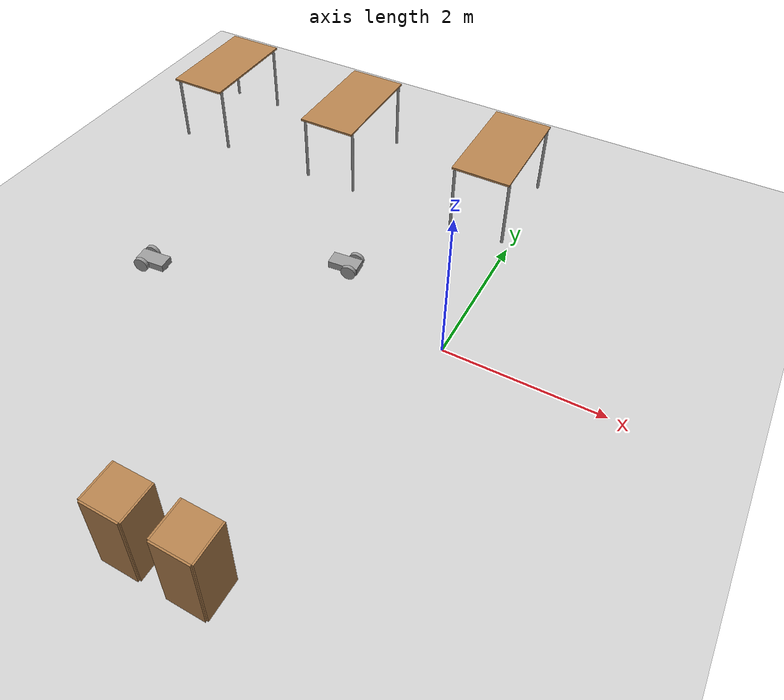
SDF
<sdf version="1.6">
 <world name="default">
  <model name="ground_plane">
   <static>1</static>
   <link name="link">
    <collision name="collision">
     <geometry><plane><normal>0 0 1</normal><size>100 100</size></plane></geometry>
     <surface><friction><ode><mu>100</mu><mu2>50</mu2></ode></friction></surface>
    </collision>
    <visual name="visual">
     <cast_shadows>0</cast_shadows>
     <geometry><plane><normal>0 0 1</normal><size>100 100</size></plane></geometry>
     <material>
      <script><uri>file://media/materials/scripts/gazebo.material</uri><name>Gazebo/Grey</name></script>
     </material>
    </visual>
   </link>
  </model>
  <model name="table">
   <static>1</static>
   <link name="link">
    <collision name="surface">
     <pose>0 0 1 0 -0 0</pose>
     <geometry><box><size>1.5 0.8 0.03</size></box></geometry>
     <surface><friction><ode><mu>0.6</mu><mu2>0.6</mu2></ode></friction></surface>
    </collision>
    <visual name="visual1">
     <pose>0 0 1 0 -0 0</pose>
     <geometry><box><size>1.5 0.8 0.03</size></box></geometry>
     <material>
      <script><uri>file://media/materials/scripts/gazebo.material</uri><name>Gazebo/Wood</name></script>
     </material>
    </visual>
    <collision name="front_left_leg">
     <pose>0.68 0.38 0.5 0 -0 0</pose>
     <geometry><cylinder><radius>0.02</radius><length>1</length></cylinder></geometry>
    </collision>
    <visual name="front_left_leg">
     <pose>0.68 0.38 0.5 0 -0 0</pose>
     <geometry><cylinder><radius>0.02</radius><length>1</length></cylinder></geometry>
     <material>
      <script><uri>file://media/materials/scripts/gazebo.material</uri><name>Gazebo/Grey</name></script>
     </material>
    </visual>
    <collision name="front_right_leg">
     <pose>0.68 -0.38 0.5 0 -0 0</pose>
     <geometry><cylinder><radius>0.02</radius><length>1</length></cylinder></geometry>
    </collision>
    <visual name="front_right_leg">
     <pose>0.68 -0.38 0.5 0 -0 0</pose>
     <geometry><cylinder><radius>0.02</radius><length>1</length></cylinder></geometry>
     <material>
      <script><uri>file://media/materials/scripts/gazebo.material</uri><name>Gazebo/Grey</name></script>
     </material>
    </visual>
    <collision name="back_right_leg">
     <pose>-0.68 -0.38 0.5 0 -0 0</pose>
     <geometry><cylinder><radius>0.02</radius><length>1</length></cylinder></geometry>
    </collision>
    <visual name="back_right_leg">
     <pose>-0.68 -0.38 0.5 0 -0 0</pose>
     <geometry><cylinder><radius>0.02</radius><length>1</length></cylinder></geometry>
     <material>
      <script><uri>file://media/materials/scripts/gazebo.material</uri><name>Gazebo/Grey</name></script>
     </material>
    </visual>
    <collision name="back_left_leg">
     <pose>-0.68 0.38 0.5 0 -0 0</pose>
     <geometry><cylinder><radius>0.02</radius><length>1</length></cylinder></geometry>
    </collision>
    <visual name="back_left_leg">
     <pose>-0.68 0.38 0.5 0 -0 0</pose>
     <geometry><cylinder><radius>0.02</radius><length>1</length></cylinder></geometry>
     <material>
      <script><uri>file://media/materials/scripts/gazebo.material</uri><name>Gazebo/Grey</name></script>
     </material>
    </visual>
   </link>
   <pose>-0.5 2.8 0 0 -0 1.5707</pose>
  </model>
  <model name="table_clone">
   <static>1</static>
   <link name="link">
    <collision name="surface">
     <pose>0 0 1 0 -0 0</pose>
     <geometry><box><size>1.5 0.8 0.03</size></box></geometry>
     <surface><friction><ode><mu>0.6</mu><mu2>0.6</mu2></ode></friction></surface>
    </collision>
    <visual name="visual1">
     <pose>0 0 1 0 -0 0</pose>
     <geometry><box><size>1.5 0.8 0.03</size></box></geometry>
     <material>
      <script><uri>file://media/materials/scripts/gazebo.material</uri><name>Gazebo/Wood</name></script>
     </material>
    </visual>
    <collision name="front_left_leg">
     <pose>0.68 0.38 0.5 0 -0 0</pose>
     <geometry><cylinder><radius>0.02</radius><length>1</length></cylinder></geometry>
    </collision>
    <visual name="front_left_leg">
     <pose>0.68 0.38 0.5 0 -0 0</pose>
     <geometry><cylinder><radius>0.02</radius><length>1</length></cylinder></geometry>
     <material>
      <script><uri>file://media/materials/scripts/gazebo.material</uri><name>Gazebo/Grey</name></script>
     </material>
    </visual>
    <collision name="front_right_leg">
     <pose>0.68 -0.38 0.5 0 -0 0</pose>
     <geometry><cylinder><radius>0.02</radius><length>1</length></cylinder></geometry>
    </collision>
    <visual name="front_right_leg">
     <pose>0.68 -0.38 0.5 0 -0 0</pose>
     <geometry><cylinder><radius>0.02</radius><length>1</length></cylinder></geometry>
     <material>
      <script><uri>file://media/materials/scripts/gazebo.material</uri><name>Gazebo/Grey</name></script>
     </material>
    </visual>
    <collision name="back_right_leg">
     <pose>-0.68 -0.38 0.5 0 -0 0</pose>
     <geometry><cylinder><radius>0.02</radius><length>1</length></cylinder></geometry>
    </collision>
    <visual name="back_right_leg">
     <pose>-0.68 -0.38 0.5 0 -0 0</pose>
     <geometry><cylinder><radius>0.02</radius><length>1</length></cylinder></geometry>
     <material>
      <script><uri>file://media/materials/scripts/gazebo.material</uri><name>Gazebo/Grey</name></script>
     </material>
    </visual>
    <collision name="back_left_leg">
     <pose>-0.68 0.38 0.5 0 -0 0</pose>
     <geometry><cylinder><radius>0.02</radius><length>1</length></cylinder></geometry>
    </collision>
    <visual name="back_left_leg">
     <pose>-0.68 0.38 0.5 0 -0 0</pose>
     <geometry><cylinder><radius>0.02</radius><length>1</length></cylinder></geometry>
     <material>
      <script><uri>file://media/materials/scripts/gazebo.material</uri><name>Gazebo/Grey</name></script>
     </material>
    </visual>
   </link>
   <pose>-2.8 2.8 0 0 -0 1.5707</pose>
  </model>
  <model name="table_clone_0">
   <static>1</static>
   <link name="link">
    <collision name="surface">
     <pose>0 0 1 0 -0 0</pose>
     <geometry><box><size>1.5 0.8 0.03</size></box></geometry>
     <surface><friction><ode><mu>0.6</mu><mu2>0.6</mu2></ode></friction></surface>
    </collision>
    <visual name="visual1">
     <pose>0 0 1 0 -0 0</pose>
     <geometry><box><size>1.5 0.8 0.03</size></box></geometry>
     <material>
      <script><uri>file://media/materials/scripts/gazebo.material</uri><name>Gazebo/Wood</name></script>
     </material>
    </visual>
    <collision name="front_left_leg">
     <pose>0.68 0.38 0.5 0 -0 0</pose>
     <geometry><cylinder><radius>0.02</radius><length>1</length></cylinder></geometry>
    </collision>
    <visual name="front_left_leg">
     <pose>0.68 0.38 0.5 0 -0 0</pose>
     <geometry><cylinder><radius>0.02</radius><length>1</length></cylinder></geometry>
     <material>
      <script><uri>file://media/materials/scripts/gazebo.material</uri><name>Gazebo/Grey</name></script>
     </material>
    </visual>
    <collision name="front_right_leg">
     <pose>0.68 -0.38 0.5 0 -0 0</pose>
     <geometry><cylinder><radius>0.02</radius><length>1</length></cylinder></geometry>
    </collision>
    <visual name="front_right_leg">
     <pose>0.68 -0.38 0.5 0 -0 0</pose>
     <geometry><cylinder><radius>0.02</radius><length>1</length></cylinder></geometry>
     <material>
      <script><uri>file://media/materials/scripts/gazebo.material</uri><name>Gazebo/Grey</name></script>
     </material>
    </visual>
    <collision name="back_right_leg">
     <pose>-0.68 -0.38 0.5 0 -0 0</pose>
     <geometry><cylinder><radius>0.02</radius><length>1</length></cylinder></geometry>
    </collision>
    <visual name="back_right_leg">
     <pose>-0.68 -0.38 0.5 0 -0 0</pose>
     <geometry><cylinder><radius>0.02</radius><length>1</length></cylinder></geometry>
     <material>
      <script><uri>file://media/materials/scripts/gazebo.material</uri><name>Gazebo/Grey</name></script>
     </material>
    </visual>
    <collision name="back_left_leg">
     <pose>-0.68 0.38 0.5 0 -0 0</pose>
     <geometry><cylinder><radius>0.02</radius><length>1</length></cylinder></geometry>
    </collision>
    <visual name="back_left_leg">
     <pose>-0.68 0.38 0.5 0 -0 0</pose>
     <geometry><cylinder><radius>0.02</radius><length>1</length></cylinder></geometry>
     <material>
      <script><uri>file://media/materials/scripts/gazebo.material</uri><name>Gazebo/Grey</name></script>
     </material>
    </visual>
   </link>
   <pose>-5.00107 2.8 0 0 -0 1.5707</pose>
  </model>
  <model name="cabinet">
   <static>1</static>
   <link name="cabinet_bottom_plate">
    <inertial>
     <pose>0 0 -1 0 -0 0</pose>
     <inertia><ixx>2.05</ixx><ixy>0</ixy><ixz>0</ixz><iyy>2.05</iyy><iyz>0</iyz><izz>2.05</izz></inertia>
     <mass>25</mass>
    </inertial>
    <collision name="cabinet_bottom_plate_geom">
     <pose>0 0 0.01 0 -0 0</pose>
     <geometry><box><size>0.45 0.45 0.02</size></box></geometry>
    </collision>
    <visual name="cabinet_bottom_plate_geom_visual">
     <pose>0 0 0.01 0 -0 0</pose>
     <geometry><box><size>0.45 0.45 0.02</size></box></geometry>
     <material>
      <script><uri>file://media/materials/scripts/gazebo.material</uri><name>Gazebo/Wood</name></script>
     </material>
    </visual>
    <collision name="cabinet_bottom_plate_geom_cabinet_back_plate">
     <pose>0.235 0 0.51 0 -0 0</pose>
     <geometry><box><size>0.02 0.45 1.02</size></box></geometry>
    </collision>
    <visual name="cabinet_bottom_plate_geom_cabinet_back_plate_visual">
     <pose>0.235 0 0.51 0 -0 0</pose>
     <geometry><box><size>0.02 0.45 1.02</size></box></geometry>
     <material>
      <script><uri>file://media/materials/scripts/gazebo.material</uri><name>Gazebo/Wood</name></script>
     </material>
    </visual>
    <collision name="cabinet_bottom_plate_geom_cabinet_left_plate">
     <pose>0 0.235 0.51 0 -0 0</pose>
     <geometry><box><size>0.45 0.02 1.02</size></box></geometry>
    </collision>
    <visual name="cabinet_bottom_plate_geom_cabinet_left_plate_visual">
     <pose>0 0.235 0.51 0 -0 0</pose>
     <geometry><box><size>0.45 0.02 1.02</size></box></geometry>
     <material>
      <script><uri>file://media/materials/scripts/gazebo.material</uri><name>Gazebo/Wood</name></script>
     </material>
    </visual>
    <collision name="cabinet_bottom_plate_geom_cabinet_middle_plate">
     <pose>0 0 0.51 0 -0 0</pose>
     <geometry><box><size>0.45 0.45 0.02</size></box></geometry>
    </collision>
    <visual name="cabinet_bottom_plate_geom_cabinet_middle_plate_visual">
     <pose>0 0 0.51 0 -0 0</pose>
     <geometry><box><size>0.45 0.45 0.02</size></box></geometry>
     <material>
      <script><uri>file://media/materials/scripts/gazebo.material</uri><name>Gazebo/Wood</name></script>
     </material>
    </visual>
    <collision name="cabinet_bottom_plate_geom_cabinet_right_plate">
     <pose>0 -0.235 0.51 0 -0 0</pose>
     <geometry><box><size>0.45 0.02 1.02</size></box></geometry>
    </collision>
    <visual name="cabinet_bottom_plate_geom_cabinet_right_plate_visual">
     <pose>0 -0.235 0.51 0 -0 0</pose>
     <geometry><box><size>0.45 0.02 1.02</size></box></geometry>
     <material>
      <script><uri>file://media/materials/scripts/gazebo.material</uri><name>Gazebo/Wood</name></script>
     </material>
    </visual>
    <collision name="cabinet_bottom_plate_geom_cabinet_top_plate">
     <pose>0 0 1.01 0 -0 0</pose>
     <geometry><box><size>0.45 0.45 0.02</size></box></geometry>
    </collision>
    <visual name="cabinet_bottom_plate_geom_cabinet_top_plate_visual">
     <pose>0 0 1.01 0 -0 0</pose>
     <geometry><box><size>0.45 0.45 0.02</size></box></geometry>
     <material>
      <script><uri>file://media/materials/scripts/gazebo.material</uri><name>Gazebo/Wood</name></script>
     </material>
    </visual>
   </link>
   <pose>-1.47484 -3.7 0 0 0 -1.5707</pose>
  </model>
  <model name="cabinet_clone">
   <static>1</static>
   <link name="cabinet_bottom_plate">
    <inertial>
     <pose>0 0 -1 0 -0 0</pose>
     <inertia><ixx>2.05</ixx><ixy>0</ixy><ixz>0</ixz><iyy>2.05</iyy><iyz>0</iyz><izz>2.05</izz></inertia>
     <mass>25</mass>
    </inertial>
    <collision name="cabinet_bottom_plate_geom">
     <pose>0 0 0.01 0 -0 0</pose>
     <geometry><box><size>0.45 0.45 0.02</size></box></geometry>
    </collision>
    <visual name="cabinet_bottom_plate_geom_visual">
     <pose>0 0 0.01 0 -0 0</pose>
     <geometry><box><size>0.45 0.45 0.02</size></box></geometry>
     <material>
      <script><uri>file://media/materials/scripts/gazebo.material</uri><name>Gazebo/Wood</name></script>
     </material>
    </visual>
    <collision name="cabinet_bottom_plate_geom_cabinet_back_plate">
     <pose>0.235 0 0.51 0 -0 0</pose>
     <geometry><box><size>0.02 0.45 1.02</size></box></geometry>
    </collision>
    <visual name="cabinet_bottom_plate_geom_cabinet_back_plate_visual">
     <pose>0.235 0 0.51 0 -0 0</pose>
     <geometry><box><size>0.02 0.45 1.02</size></box></geometry>
     <material>
      <script><uri>file://media/materials/scripts/gazebo.material</uri><name>Gazebo/Wood</name></script>
     </material>
    </visual>
    <collision name="cabinet_bottom_plate_geom_cabinet_left_plate">
     <pose>0 0.235 0.51 0 -0 0</pose>
     <geometry><box><size>0.45 0.02 1.02</size></box></geometry>
    </collision>
    <visual name="cabinet_bottom_plate_geom_cabinet_left_plate_visual">
     <pose>0 0.235 0.51 0 -0 0</pose>
     <geometry><box><size>0.45 0.02 1.02</size></box></geometry>
     <material>
      <script><uri>file://media/materials/scripts/gazebo.material</uri><name>Gazebo/Wood</name></script>
     </material>
    </visual>
    <collision name="cabinet_bottom_plate_geom_cabinet_middle_plate">
     <pose>0 0 0.51 0 -0 0</pose>
     <geometry><box><size>0.45 0.45 0.02</size></box></geometry>
    </collision>
    <visual name="cabinet_bottom_plate_geom_cabinet_middle_plate_visual">
     <pose>0 0 0.51 0 -0 0</pose>
     <geometry><box><size>0.45 0.45 0.02</size></box></geometry>
     <material>
      <script><uri>file://media/materials/scripts/gazebo.material</uri><name>Gazebo/Wood</name></script>
     </material>
    </visual>
    <collision name="cabinet_bottom_plate_geom_cabinet_right_plate">
     <pose>0 -0.235 0.51 0 -0 0</pose>
     <geometry><box><size>0.45 0.02 1.02</size></box></geometry>
    </collision>
    <visual name="cabinet_bottom_plate_geom_cabinet_right_plate_visual">
     <pose>0 -0.235 0.51 0 -0 0</pose>
     <geometry><box><size>0.45 0.02 1.02</size></box></geometry>
     <material>
      <script><uri>file://media/materials/scripts/gazebo.material</uri><name>Gazebo/Wood</name></script>
     </material>
    </visual>
    <collision name="cabinet_bottom_plate_geom_cabinet_top_plate">
     <pose>0 0 1.01 0 -0 0</pose>
     <geometry><box><size>0.45 0.45 0.02</size></box></geometry>
    </collision>
    <visual name="cabinet_bottom_plate_geom_cabinet_top_plate_visual">
     <pose>0 0 1.01 0 -0 0</pose>
     <geometry><box><size>0.45 0.45 0.02</size></box></geometry>
     <material>
      <script><uri>file://media/materials/scripts/gazebo.material</uri><name>Gazebo/Wood</name></script>
     </material>
    </visual>
   </link>
   <pose>-0.7 -3.7 0 0 0 -1.5707</pose>
  </model>
  <model name="robot_0">
   <link name="link_0">
    <pose>0 0 0.1 -0 -0 -0</pose>
    <inertial>
     <mass>1</mass>
     <inertia>
      <ixx>0.166667</ixx>
      <ixy>0</ixy>
      <ixz>0</ixz>
      <iyy>0.166667</iyy>
      <iyz>0</iyz>
      <izz>0.166667</izz>
     </inertia>
     <pose>0 0 0.1 0 -0 0</pose>
    </inertial>
    <visual name="caster_visual">
     <pose>-0.15 0 -0.05 0 -0 0</pose>
     <geometry><sphere><radius>0.05</radius></sphere></geometry>
     <material>
      <lighting>1</lighting>
      <script><uri>file://media/materials/scripts/gazebo.material</uri><name>Gazebo/Grey</name></script>
      <shader type="pixel"><normal_map>__default__</normal_map></shader>
      <ambient>0.3 0.3 0.3 1</ambient>
      <diffuse>0.7 0.7 0.7 1</diffuse>
      <specular>0.01 0.01 0.01 1</specular>
      <emissive>0 0 0 1</emissive>
     </material>
    </visual>
    <visual name="visual">
     <geometry><box><size>0.4 0.2 0.1</size></box></geometry>
     <material>
      <lighting>1</lighting>
      <script><uri>file://media/materials/scripts/gazebo.material</uri><name>Gazebo/Grey</name></script>
      <shader type="pixel"><normal_map>__default__</normal_map></shader>
      <ambient>0.3 0.3 0.3 1</ambient>
      <diffuse>0.7 0.7 0.7 1</diffuse>
      <specular>0.01 0.01 0.01 1</specular>
      <emissive>0 0 0 1</emissive>
     </material>
    </visual>
    <collision name="caster_collision">
     <pose>-0.15 0 -0.05 0 -0 0</pose>
     <geometry><sphere><radius>0.05</radius></sphere></geometry>
     <surface>
      <friction>
       <ode><mu>0</mu><mu2>0</mu2><fdir1>0 0 0</fdir1><slip1>1</slip1><slip2>1</slip2></ode>
       <torsional>
        <coefficient>1</coefficient>
        <patch_radius>0</patch_radius>
        <surface_radius>0</surface_radius>
        <use_patch_radius>1</use_patch_radius>
        <ode><slip>0</slip></ode>
       </torsional>
      </friction>
      <bounce><restitution_coefficient>0</restitution_coefficient><threshold>1e+06</threshold></bounce>
      <contact>
       <collide_without_contact>0</collide_without_contact>
       <collide_without_contact_bitmask>1</collide_without_contact_bitmask>
       <collide_bitmask>1</collide_bitmask>
       <ode>
        <soft_cfm>0</soft_cfm>
        <soft_erp>0.2</soft_erp>
        <kp>1e+13</kp>
        <kd>1</kd>
        <max_vel>0.01</max_vel>
        <min_depth>0</min_depth>
       </ode>
       <bullet>
        <split_impulse>1</split_impulse>
        <split_impulse_penetration_threshold>-0.01</split_impulse_penetration_threshold>
        <soft_cfm>0</soft_cfm>
        <soft_erp>0.2</soft_erp>
        <kp>1e+13</kp>
        <kd>1</kd>
       </bullet>
      </contact>
     </surface>
    </collision>
    <collision name="collision">
     <geometry><box><size>0.4 0.2 0.1</size></box></geometry>
     <surface>
      <friction>
       <ode><mu>1</mu><mu2>1</mu2><fdir1>0 0 0</fdir1><slip1>0</slip1><slip2>0</slip2></ode>
       <torsional>
        <coefficient>1</coefficient>
        <patch_radius>0</patch_radius>
        <surface_radius>0</surface_radius>
        <use_patch_radius>1</use_patch_radius>
        <ode><slip>0</slip></ode>
       </torsional>
      </friction>
      <bounce><restitution_coefficient>0</restitution_coefficient><threshold>1e+06</threshold></bounce>
      <contact>
       <collide_without_contact>0</collide_without_contact>
       <collide_without_contact_bitmask>1</collide_without_contact_bitmask>
       <collide_bitmask>1</collide_bitmask>
       <ode>
        <soft_cfm>0</soft_cfm>
        <soft_erp>0.2</soft_erp>
        <kp>1e+13</kp>
        <kd>1</kd>
        <max_vel>0.01</max_vel>
        <min_depth>0</min_depth>
       </ode>
       <bullet>
        <split_impulse>1</split_impulse>
        <split_impulse_penetration_threshold>-0.01</split_impulse_penetration_threshold>
        <soft_cfm>0</soft_cfm>
        <soft_erp>0.2</soft_erp>
        <kp>1e+13</kp>
        <kd>1</kd>
       </bullet>
      </contact>
     </surface>
    </collision>
   </link>
   <link name="link_2">
    <pose>0.1 0.13 0.1 -0.00057 1.5707 1.57013</pose>
    <inertial>
     <mass>1</mass>
     <inertia><ixx>0.145833</ixx><ixy>0</ixy><ixz>0</ixz><iyy>0.145833</iyy><iyz>0</iyz><izz>0.125</izz></inertia>
    </inertial>
    <visual name="visual">
     <geometry><cylinder><radius>0.1</radius><length>0.05</length></cylinder></geometry>
     <material>
      <lighting>1</lighting>
      <script><uri>file://media/materials/scripts/gazebo.material</uri><name>Gazebo/Grey</name></script>
      <shader type="pixel"><normal_map>__default__</normal_map></shader>
      <ambient>0.3 0.3 0.3 1</ambient>
      <diffuse>0.7 0.7 0.7 1</diffuse>
      <specular>0.01 0.01 0.01 1</specular>
      <emissive>0 0 0 1</emissive>
     </material>
    </visual>
    <collision name="collision">
     <geometry><cylinder><radius>0.1</radius><length>0.05</length></cylinder></geometry>
     <surface>
      <friction>
       <ode><mu>1</mu><mu2>1</mu2><fdir1>0 0 0</fdir1><slip1>0</slip1><slip2>0</slip2></ode>
       <torsional>
        <coefficient>1</coefficient>
        <patch_radius>0</patch_radius>
        <surface_radius>0</surface_radius>
        <use_patch_radius>1</use_patch_radius>
        <ode><slip>0</slip></ode>
       </torsional>
      </friction>
      <bounce><restitution_coefficient>0</restitution_coefficient><threshold>1e+06</threshold></bounce>
      <contact>
       <collide_without_contact>0</collide_without_contact>
       <collide_without_contact_bitmask>1</collide_without_contact_bitmask>
       <collide_bitmask>1</collide_bitmask>
       <ode>
        <soft_cfm>0</soft_cfm>
        <soft_erp>0.2</soft_erp>
        <kp>1e+13</kp>
        <kd>1</kd>
        <max_vel>0.01</max_vel>
        <min_depth>0</min_depth>
       </ode>
       <bullet>
        <split_impulse>1</split_impulse>
        <split_impulse_penetration_threshold>-0.01</split_impulse_penetration_threshold>
        <soft_cfm>0</soft_cfm>
        <soft_erp>0.2</soft_erp>
        <kp>1e+13</kp>
        <kd>1</kd>
       </bullet>
      </contact>
     </surface>
    </collision>
   </link>
   <link name="link_3">
    <pose>0.1 -0.13 0.1 -0.00057 1.5707 1.57013</pose>
    <inertial>
     <mass>1</mass>
     <inertia><ixx>0.145833</ixx><ixy>0</ixy><ixz>0</ixz><iyy>0.145833</iyy><iyz>0</iyz><izz>0.125</izz></inertia>
    </inertial>
    <visual name="visual">
     <geometry><cylinder><radius>0.1</radius><length>0.05</length></cylinder></geometry>
     <material>
      <lighting>1</lighting>
      <script><uri>file://media/materials/scripts/gazebo.material</uri><name>Gazebo/Grey</name></script>
      <shader type="pixel"><normal_map>__default__</normal_map></shader>
      <ambient>0.3 0.3 0.3 1</ambient>
      <diffuse>0.7 0.7 0.7 1</diffuse>
      <specular>0.01 0.01 0.01 1</specular>
      <emissive>0 0 0 1</emissive>
     </material>
    </visual>
    <collision name="collision">
     <geometry><cylinder><radius>0.1</radius><length>0.05</length></cylinder></geometry>
     <surface>
      <friction>
       <ode><mu>1</mu><mu2>1</mu2><fdir1>0 0 0</fdir1><slip1>0</slip1><slip2>0</slip2></ode>
       <torsional>
        <coefficient>1</coefficient>
        <patch_radius>0</patch_radius>
        <surface_radius>0</surface_radius>
        <use_patch_radius>1</use_patch_radius>
        <ode><slip>0</slip></ode>
       </torsional>
      </friction>
      <bounce><restitution_coefficient>0</restitution_coefficient><threshold>1e+06</threshold></bounce>
      <contact>
       <collide_without_contact>0</collide_without_contact>
       <collide_without_contact_bitmask>1</collide_without_contact_bitmask>
       <collide_bitmask>1</collide_bitmask>
       <ode>
        <soft_cfm>0</soft_cfm>
        <soft_erp>0.2</soft_erp>
        <kp>1e+13</kp>
        <kd>1</kd>
        <max_vel>0.01</max_vel>
        <min_depth>0</min_depth>
       </ode>
       <bullet>
        <split_impulse>1</split_impulse>
        <split_impulse_penetration_threshold>-0.01</split_impulse_penetration_threshold>
        <soft_cfm>0</soft_cfm>
        <soft_erp>0.2</soft_erp>
        <kp>1e+13</kp>
        <kd>1</kd>
       </bullet>
      </contact>
     </surface>
    </collision>
   </link>
   <joint name="link_0_JOINT_2" type="revolute">
    <parent>link_0</parent>
    <child>link_2</child>
    <pose>0 0 -0.03 0 -0 0</pose>
    <axis>
     <xyz>0 0 -1</xyz>
     <use_parent_model_frame>0</use_parent_model_frame>
     <limit>
      <lower>-1.79769e+308</lower>
      <upper>1.79769e+308</upper>
      <effort>-1</effort>
      <velocity>-1</velocity>
     </limit>
     <dynamics>
      <spring_reference>0</spring_reference>
      <spring_stiffness>0</spring_stiffness>
      <damping>0</damping>
      <friction>0</friction>
     </dynamics>
    </axis>
    <physics>
     <ode><limit><cfm>0</cfm><erp>0.2</erp></limit><suspension><cfm>0</cfm><erp>0.2</erp></suspension></ode>
    </physics>
   </joint>
   <joint name="link_0_JOINT_3" type="revolute">
    <parent>link_0</parent>
    <child>link_3</child>
    <pose>0 0 -0.03 0 -0 0</pose>
    <axis>
     <xyz>0 0 -1</xyz>
     <use_parent_model_frame>0</use_parent_model_frame>
     <limit>
      <lower>-1.79769e+308</lower>
      <upper>1.79769e+308</upper>
      <effort>-1</effort>
      <velocity>-1</velocity>
     </limit>
     <dynamics>
      <spring_reference>0</spring_reference>
      <spring_stiffness>0</spring_stiffness>
      <damping>0</damping>
      <friction>0</friction>
     </dynamics>
    </axis>
    <physics>
     <ode><limit><cfm>0</cfm><erp>0.2</erp></limit><suspension><cfm>0</cfm><erp>0.2</erp></suspension></ode>
    </physics>
   </joint>
   <static>0</static>
   <pose>-1.6868 0.642277 4e-06 -1.8e-05 -1e-06 0.097278</pose>
  </model>
  <model name="robot_0_clone">
   <link name="link_0">
    <pose>0 0 0.1 -0 -0 -0</pose>
    <inertial>
     <mass>1</mass>
     <inertia>
      <ixx>0.166667</ixx>
      <ixy>0</ixy>
      <ixz>0</ixz>
      <iyy>0.166667</iyy>
      <iyz>0</iyz>
      <izz>0.166667</izz>
     </inertia>
     <pose>0 0 0.1 0 -0 0</pose>
    </inertial>
    <visual name="caster_visual">
     <pose>-0.15 0 -0.05 0 -0 0</pose>
     <geometry><sphere><radius>0.05</radius></sphere></geometry>
     <material>
      <lighting>1</lighting>
      <script><uri>file://media/materials/scripts/gazebo.material</uri><name>Gazebo/Grey</name></script>
      <shader type="pixel"><normal_map>__default__</normal_map></shader>
      <ambient>0.3 0.3 0.3 1</ambient>
      <diffuse>0.7 0.7 0.7 1</diffuse>
      <specular>0.01 0.01 0.01 1</specular>
      <emissive>0 0 0 1</emissive>
     </material>
    </visual>
    <visual name="visual">
     <geometry><box><size>0.4 0.2 0.1</size></box></geometry>
     <material>
      <lighting>1</lighting>
      <script><uri>file://media/materials/scripts/gazebo.material</uri><name>Gazebo/Grey</name></script>
      <shader type="pixel"><normal_map>__default__</normal_map></shader>
      <ambient>0.3 0.3 0.3 1</ambient>
      <diffuse>0.7 0.7 0.7 1</diffuse>
      <specular>0.01 0.01 0.01 1</specular>
      <emissive>0 0 0 1</emissive>
     </material>
    </visual>
    <collision name="caster_collision">
     <pose>-0.15 0 -0.05 0 -0 0</pose>
     <geometry><sphere><radius>0.05</radius></sphere></geometry>
     <surface>
      <friction>
       <ode><mu>0</mu><mu2>0</mu2><fdir1>0 0 0</fdir1><slip1>1</slip1><slip2>1</slip2></ode>
       <torsional>
        <coefficient>1</coefficient>
        <patch_radius>0</patch_radius>
        <surface_radius>0</surface_radius>
        <use_patch_radius>1</use_patch_radius>
        <ode><slip>0</slip></ode>
       </torsional>
      </friction>
      <bounce><restitution_coefficient>0</restitution_coefficient><threshold>1e+06</threshold></bounce>
      <contact>
       <collide_without_contact>0</collide_without_contact>
       <collide_without_contact_bitmask>1</collide_without_contact_bitmask>
       <collide_bitmask>1</collide_bitmask>
       <ode>
        <soft_cfm>0</soft_cfm>
        <soft_erp>0.2</soft_erp>
        <kp>1e+13</kp>
        <kd>1</kd>
        <max_vel>0.01</max_vel>
        <min_depth>0</min_depth>
       </ode>
       <bullet>
        <split_impulse>1</split_impulse>
        <split_impulse_penetration_threshold>-0.01</split_impulse_penetration_threshold>
        <soft_cfm>0</soft_cfm>
        <soft_erp>0.2</soft_erp>
        <kp>1e+13</kp>
        <kd>1</kd>
       </bullet>
      </contact>
     </surface>
    </collision>
    <collision name="collision">
     <geometry><box><size>0.4 0.2 0.1</size></box></geometry>
     <surface>
      <friction>
       <ode><mu>1</mu><mu2>1</mu2><fdir1>0 0 0</fdir1><slip1>0</slip1><slip2>0</slip2></ode>
       <torsional>
        <coefficient>1</coefficient>
        <patch_radius>0</patch_radius>
        <surface_radius>0</surface_radius>
        <use_patch_radius>1</use_patch_radius>
        <ode><slip>0</slip></ode>
       </torsional>
      </friction>
      <bounce><restitution_coefficient>0</restitution_coefficient><threshold>1e+06</threshold></bounce>
      <contact>
       <collide_without_contact>0</collide_without_contact>
       <collide_without_contact_bitmask>1</collide_without_contact_bitmask>
       <collide_bitmask>1</collide_bitmask>
       <ode>
        <soft_cfm>0</soft_cfm>
        <soft_erp>0.2</soft_erp>
        <kp>1e+13</kp>
        <kd>1</kd>
        <max_vel>0.01</max_vel>
        <min_depth>0</min_depth>
       </ode>
       <bullet>
        <split_impulse>1</split_impulse>
        <split_impulse_penetration_threshold>-0.01</split_impulse_penetration_threshold>
        <soft_cfm>0</soft_cfm>
        <soft_erp>0.2</soft_erp>
        <kp>1e+13</kp>
        <kd>1</kd>
       </bullet>
      </contact>
     </surface>
    </collision>
   </link>
   <link name="link_2">
    <pose>0.1 0.13 0.1 -0.00057 1.5707 1.57013</pose>
    <inertial>
     <mass>1</mass>
     <inertia><ixx>0.145833</ixx><ixy>0</ixy><ixz>0</ixz><iyy>0.145833</iyy><iyz>0</iyz><izz>0.125</izz></inertia>
    </inertial>
    <visual name="visual">
     <geometry><cylinder><radius>0.1</radius><length>0.05</length></cylinder></geometry>
     <material>
      <lighting>1</lighting>
      <script><uri>file://media/materials/scripts/gazebo.material</uri><name>Gazebo/Grey</name></script>
      <shader type="pixel"><normal_map>__default__</normal_map></shader>
      <ambient>0.3 0.3 0.3 1</ambient>
      <diffuse>0.7 0.7 0.7 1</diffuse>
      <specular>0.01 0.01 0.01 1</specular>
      <emissive>0 0 0 1</emissive>
     </material>
    </visual>
    <collision name="collision">
     <geometry><cylinder><radius>0.1</radius><length>0.05</length></cylinder></geometry>
     <surface>
      <friction>
       <ode><mu>1</mu><mu2>1</mu2><fdir1>0 0 0</fdir1><slip1>0</slip1><slip2>0</slip2></ode>
       <torsional>
        <coefficient>1</coefficient>
        <patch_radius>0</patch_radius>
        <surface_radius>0</surface_radius>
        <use_patch_radius>1</use_patch_radius>
        <ode><slip>0</slip></ode>
       </torsional>
      </friction>
      <bounce><restitution_coefficient>0</restitution_coefficient><threshold>1e+06</threshold></bounce>
      <contact>
       <collide_without_contact>0</collide_without_contact>
       <collide_without_contact_bitmask>1</collide_without_contact_bitmask>
       <collide_bitmask>1</collide_bitmask>
       <ode>
        <soft_cfm>0</soft_cfm>
        <soft_erp>0.2</soft_erp>
        <kp>1e+13</kp>
        <kd>1</kd>
        <max_vel>0.01</max_vel>
        <min_depth>0</min_depth>
       </ode>
       <bullet>
        <split_impulse>1</split_impulse>
        <split_impulse_penetration_threshold>-0.01</split_impulse_penetration_threshold>
        <soft_cfm>0</soft_cfm>
        <soft_erp>0.2</soft_erp>
        <kp>1e+13</kp>
        <kd>1</kd>
       </bullet>
      </contact>
     </surface>
    </collision>
   </link>
   <link name="link_3">
    <pose>0.1 -0.13 0.1 -0.00057 1.5707 1.57013</pose>
    <inertial>
     <mass>1</mass>
     <inertia><ixx>0.145833</ixx><ixy>0</ixy><ixz>0</ixz><iyy>0.145833</iyy><iyz>0</iyz><izz>0.125</izz></inertia>
    </inertial>
    <visual name="visual">
     <geometry><cylinder><radius>0.1</radius><length>0.05</length></cylinder></geometry>
     <material>
      <lighting>1</lighting>
      <script><uri>file://media/materials/scripts/gazebo.material</uri><name>Gazebo/Grey</name></script>
      <shader type="pixel"><normal_map>__default__</normal_map></shader>
      <ambient>0.3 0.3 0.3 1</ambient>
      <diffuse>0.7 0.7 0.7 1</diffuse>
      <specular>0.01 0.01 0.01 1</specular>
      <emissive>0 0 0 1</emissive>
     </material>
    </visual>
    <collision name="collision">
     <geometry><cylinder><radius>0.1</radius><length>0.05</length></cylinder></geometry>
     <surface>
      <friction>
       <ode><mu>1</mu><mu2>1</mu2><fdir1>0 0 0</fdir1><slip1>0</slip1><slip2>0</slip2></ode>
       <torsional>
        <coefficient>1</coefficient>
        <patch_radius>0</patch_radius>
        <surface_radius>0</surface_radius>
        <use_patch_radius>1</use_patch_radius>
        <ode><slip>0</slip></ode>
       </torsional>
      </friction>
      <bounce><restitution_coefficient>0</restitution_coefficient><threshold>1e+06</threshold></bounce>
      <contact>
       <collide_without_contact>0</collide_without_contact>
       <collide_without_contact_bitmask>1</collide_without_contact_bitmask>
       <collide_bitmask>1</collide_bitmask>
       <ode>
        <soft_cfm>0</soft_cfm>
        <soft_erp>0.2</soft_erp>
        <kp>1e+13</kp>
        <kd>1</kd>
        <max_vel>0.01</max_vel>
        <min_depth>0</min_depth>
       </ode>
       <bullet>
        <split_impulse>1</split_impulse>
        <split_impulse_penetration_threshold>-0.01</split_impulse_penetration_threshold>
        <soft_cfm>0</soft_cfm>
        <soft_erp>0.2</soft_erp>
        <kp>1e+13</kp>
        <kd>1</kd>
       </bullet>
      </contact>
     </surface>
    </collision>
   </link>
   <joint name="link_0_JOINT_2" type="revolute">
    <parent>link_0</parent>
    <child>link_2</child>
    <pose>0 0 -0.03 0 -0 0</pose>
    <axis>
     <xyz>0 0 -1</xyz>
     <use_parent_model_frame>0</use_parent_model_frame>
     <limit>
      <lower>-1.79769e+308</lower>
      <upper>1.79769e+308</upper>
      <effort>-1</effort>
      <velocity>-1</velocity>
     </limit>
     <dynamics>
      <spring_reference>0</spring_reference>
      <spring_stiffness>0</spring_stiffness>
      <damping>0</damping>
      <friction>0</friction>
     </dynamics>
    </axis>
    <physics>
     <ode><limit><cfm>0</cfm><erp>0.2</erp></limit><suspension><cfm>0</cfm><erp>0.2</erp></suspension></ode>
    </physics>
   </joint>
   <joint name="link_0_JOINT_3" type="revolute">
    <parent>link_0</parent>
    <child>link_3</child>
    <pose>0 0 -0.03 0 -0 0</pose>
    <axis>
     <xyz>0 0 -1</xyz>
     <use_parent_model_frame>0</use_parent_model_frame>
     <limit>
      <lower>-1.79769e+308</lower>
      <upper>1.79769e+308</upper>
      <effort>-1</effort>
      <velocity>-1</velocity>
     </limit>
     <dynamics>
      <spring_reference>0</spring_reference>
      <spring_stiffness>0</spring_stiffness>
      <damping>0</damping>
      <friction>0</friction>
     </dynamics>
    </axis>
    <physics>
     <ode><limit><cfm>0</cfm><erp>0.2</erp></limit><suspension><cfm>0</cfm><erp>0.2</erp></suspension></ode>
    </physics>
   </joint>
   <static>0</static>
   <pose>-3.89116 -0.508257 -5e-06 -3e-06 8e-06 -3.04783</pose>
  </model>
 </world>
</sdf>
